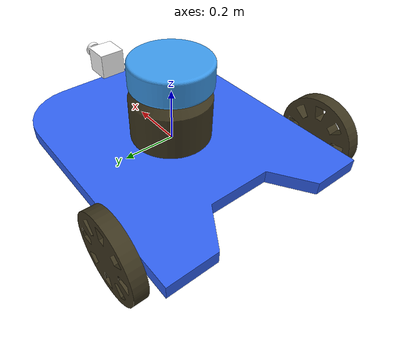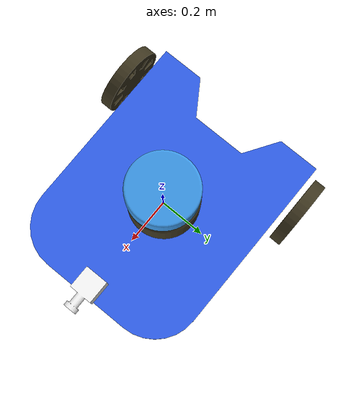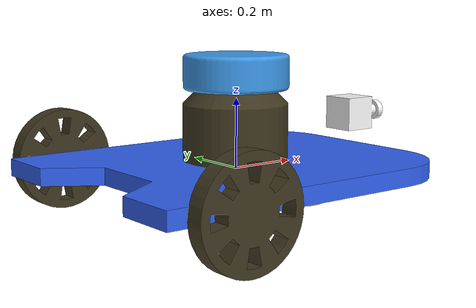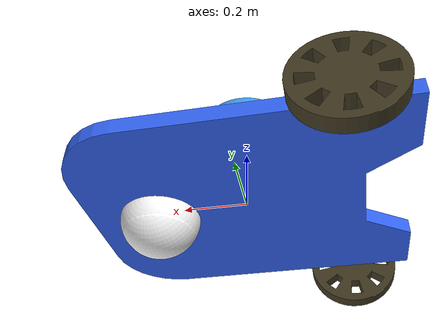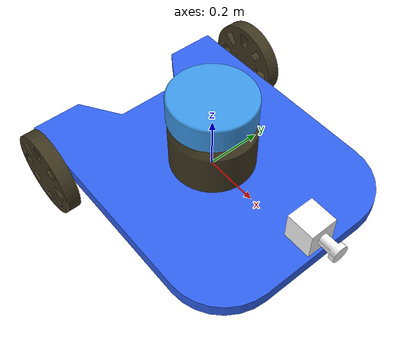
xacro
<?xml version="1.0" ?>

<robot name="moby" xmlns:xacro="http://www.ros.org/wiki/xacro" >
    <link name = "base_link">
        <visual>
            <origin xyz = "0 0 0" rpy = "0 0 0"/>
            <geometry>
                <mesh filename="package://urdf_sim/model/meshes/base.STL"/>
            </geometry>
            <material name="Cyan">
                <color rgba = "0.192 0.384 0.945 1.0"/>
            </material>
        </visual>
        <inertial>
            <mass value="0.3"/>
            <inertia ixx="0.002" ixy="0.0" ixz="0.0" iyy="0.002676" iyz="0" izz="0.004662"/>
        </inertial>

        <collision>
            <geometry>
                 <mesh filename="package://urdf_sim/model/meshes/base.STL"/>
            </geometry>
        </collision>
    </link>

    <link name = "leftwheel_link">
        <visual>
            <origin xyz = "0 0 0" rpy = "1.5708 0 1.5708"/>
            <geometry>
                <mesh filename="package://urdf_sim/model/meshes/wheel.STL"/>
            </geometry>
            <material name="grey">
                <color rgba = "0.243 0.215 0.125 1"/>
            </material>
        </visual>

        <inertial>
            <mass value="0.1"/>
            <inertia ixx="0.000032" ixy="0.0" ixz="0.0" iyy="0.000017" iyz="0" izz="0.000017"/>
        </inertial>

         <collision>
            <origin xyz = "0 0 0" rpy = "0 0 1.5708"/>
            <geometry>
                 <mesh filename="package://urdf_sim/model/meshes/wheel.dae"/>
            </geometry>
        </collision>
    </link>

    <joint name = "leftwheel_joint" type = "continuous">
        <origin xyz = "-0.32 0.45 0" rpy = "0 0 0"/>
        <parent link = "base_link"/>
        <child link = "leftwheel_link"/>
        <limit effort = "30" velocity="10"/>
        <axis rpy="0 0 0" xyz = "0 1 0"/>
    </joint>

    <link name = "rightwheel_link">
        <visual>
            <origin xyz = "0 0 0" rpy = "1.5708 0 1.5708"/>
            <geometry>
                <mesh filename="package://urdf_sim/model/meshes/wheel.dae"/>
            </geometry>
             <material name="grey">
                <color rgba = "0.243 0.215 0.125 1"/>
            </material>
        </visual>

        <inertial>
            <mass value="0.1"/>
            <inertia ixx="0.000032" ixy="0.0" ixz="0.0" iyy="0.000017" iyz="0" izz="0.000017"/>
        </inertial>

        <collision>
            <origin xyz = "0 0 0" rpy = "0 0 1.5708"/>
            <geometry>
                 <mesh filename="package://urdf_sim/model/meshes/wheel.STL"/>
            </geometry>
        </collision>
    </link>

    <joint name = "rightwheel_joint" type = "continuous">
        <origin xyz = "-0.32 -0.45 0" rpy = "0 0 0"/>
        <parent link = "base_link"/>
        <child link = "rightwheel_link"/>
        <limit effort = "30" velocity="10"/>
        <axis rpy="0 0 0" xyz = "0 1 0"/>
    </joint>

    <link name = "lidarbase_link">
        <visual>
            <origin xyz = "0 0 0.02" rpy = "0 0 0"/>
            <geometry>
                <mesh filename="package://urdf_sim/model/meshes/lidarBase.STL"/>
            </geometry>
            <material name="grey">

            </material>
        </visual>

        <inertial>
            <mass value="0.1"/>
            <inertia ixx="0.000114" ixy="0.0" ixz="0.0" iyy="0.000114" iyz="0" izz="0.000145"/>
        </inertial>

        <collision>
            <origin xyz = "0 0 0" rpy = "0 0 0"/>
            <geometry>
                 <mesh filename="package://urdf_sim/model/meshes/lidarBase.STL"/>
            </geometry>
        </collision>
    </link>

    <joint name = "lidarbase_joint" type = "fixed">
        <origin xyz = "0 0 0.125" rpy = "0 0 0"/>
        <parent link = "base_link"/>
        <child link = "lidarbase_link"/>
        <limit effort = "0" velocity="0"/>
        <axis rpy="0 0 0" xyz = "0 0 0"/>
    </joint>

    <link name = "caster_link">
        <visual>
            <origin xyz = "0 0 0" rpy = "0 0 0"/>
            <geometry>
                <mesh filename="package://urdf_sim/model/meshes/ball.STL"/>
            </geometry>
            <material name="white">
                <color rgba = "1 1 1 1"/>
            </material>
        </visual>

        <collision>
            <origin xyz = "0 0 0" rpy = "0 0 0"/>
            <geometry>
                 <mesh filename="package://urdf_sim/model/meshes/ball.STL"/>
            </geometry>
        </collision>
    </link>

    <joint name = "caster_joint" type = "fixed">
        <origin xyz = "0.275 0 0" rpy = "0 0 0"/>
        <parent link = "base_link"/>
        <child link = "caster_link"/>
        <limit effort = "0" velocity="0"/>
        <axis rpy="0 0 0" xyz = "0 0 0"/>
    </joint>

    <link name = "lidar_link">
        <visual>
            <origin xyz = "0 0 0" rpy = "0 0 0"/>
            <geometry>
                <mesh filename="package://urdf_sim/model/meshes/Lidar.STL"/>
            </geometry>
            <material name = "blue2">
                <color rgba = "0.239 0.604 0.917 1"/>
            </material>
        </visual>

        <inertial>
            <mass value="0.1"/>
            <inertia ixx="0.000045" ixy="0.0" ixz="0.0" iyy="0.000045" iyz="0" izz="0.000078"/>
        </inertial>

        <collision>
            <origin xyz = "0 0 0" rpy = "0 0 0"/>
            <geometry>
                  <mesh filename="package://urdf_sim/model/meshes/Lidar.STL"/>
            </geometry>
        </collision>
    </link>

    <joint name = "lidar_joint" type = "fixed">
        <origin xyz = "0 0 0.15" rpy = "0 0 0"/>
        <parent link = "lidarbase_link"/>
        <child link = "lidar_link"/>
        <limit effort = "0" velocity="0"/>
        <axis rpy="0 0 0" xyz = "0 0 0"/>
    </joint>

    <link name = "camera_link">
        <visual>
            <origin xyz = "0 0 0" rpy = "0 0 0"/>
            <geometry>
                <mesh filename="package://urdf_sim/model/meshes/Cam.STL"/>
            </geometry>
            <material name="white">
                <color rgba = "1 1 1 1"/>
            </material>

        </visual>
        <inertial>
            <mass value="0.05"/>
            <inertia ixx="0.00002" ixy="0.0" ixz="0.0" iyy="0.00002" iyz="0" izz="0.00004"/>
        </inertial>

        <collision>
            <origin xyz = "0 0 0" rpy = "0 0 0"/>
            <geometry>
                  <mesh filename="package://urdf_sim/model/meshes/Cam.STL"/>
            </geometry>
        </collision>
    </link>

     <joint name = "camera_joint" type = "revolute">
        <origin xyz = "0.45 0 0.125" rpy = "0 0 0"/>
        <parent link = "base_link"/>
        <child link = "camera_link"/>
        <limit effort = "10" velocity="10" upper = "0.523" lower = "-0.523"/>
        <axis rpy="0 0 0" xyz = "0 1 0"/>
    </joint>

    <gazebo reference="base_link">
        <material>Gazebo/Blue</material>
    </gazebo>

    <gazebo reference="leftwheel_link">
        <material>Gazebo/Grey</material>

        <mu1 value ="0.4"/>
        <mu2 value = "0.35"/>

        <kp value = "1000" />
        <kd value = "100"/>

    </gazebo>

    <gazebo reference="rightwheel_link">
        <material>Gazebo/Grey</material>-->

        <mu1 value ="0.4"/>
        <mu2 value = "0.35"/>

        <kp value = "1000" />
        <kd value = "100"/>

    </gazebo>

    <gazebo reference="lidarbase_link">
        <material>Gazebo/Blue</material>
    </gazebo>

    <gazebo reference="lidar_link">
        <material>Gazebo/BlueGlow</material>
    </gazebo>

    <gazebo reference="caster_link">
        <material>Gazebo/White</material>

        <mu1 value ="0.03"/>
        <mu2 value = "0.025"/>

        <kp value = "1000" />
        <kd value = "100"/>
    </gazebo>

    <gazebo reference="camera_link">
        <material>Gazebo/White</material>
    </gazebo>

    <gazebo>

	    <plugin filename="libgazebo_ros_diff_drive.so" name="differential_drive_controller">
		<alwaysOn>true</alwaysOn>
		<updateRate>20</updateRate>
		<leftJoint>leftwheel_joint</leftJoint>
		<rightJoint>rightwheel_joint</rightJoint>
		<wheelSeparation>0.9</wheelSeparation>
		<wheelDiameter>0.3</wheelDiameter>
		<torque>10</torque>
		<commandTopic>cmd_vel</commandTopic>
		<odometryTopic>odom</odometryTopic>
		<odometryFrame>odom</odometryFrame>
		<robotBaseFrame>base_link</robotBaseFrame>
	    </plugin>
    </gazebo>

	<gazebo reference="lidar_link">
        <sensor type="ray" name="moby_laser_sensor">
        <pose>0 0 0 0 0 0</pose>
        <visualize>false</visualize>
        <update_rate>20</update_rate>
        <ray>
         <scan>
            <horizontal>
                <samples>720</samples>
                <resolution>1</resolution>
                <min_angle>-3.14</min_angle>
                <max_angle>3.14</max_angle>
            </horizontal>
        </scan>
        <range>
             <min>0.2</min>
             <max>10.0</max>
             <resolution>0.01</resolution>
        </range>
        <noise>
              <type>gaussian</type>
              <mean>0.0</mean>
              <stddev>0.01</stddev>
        </noise>
        </ray>
        <plugin name="gazebo_ros_head_hokuyo_controller" filename="libgazebo_ros_laser.so">
        <topicName>/moby/laser/scan</topicName>
        <frameName>lidar_link</frameName>
      </plugin>
    </sensor>
  </gazebo>
	<!--IMU sensor-->
  <gazebo reference="base_link">
    <gravity>true</gravity>
    <sensor name="moby_imu_sensor" type="imu">
      <always_on>true</always_on>
      <update_rate>100</update_rate>
      <visualize>true</visualize>
      <topic>__default_topic__</topic>
      <plugin filename="libgazebo_ros_imu_sensor.so" name="imu_plugin">
        <topicName>moby/imu</topicName>
        <bodyName>base_link</bodyName>
        <updateRateHZ>10.0</updateRateHZ>
        <gaussianNoise>0.0</gaussianNoise>
        <xyzOffset>0 0 0</xyzOffset>
        <rpyOffset>0 0 0</rpyOffset>
        <frameName>base_links</frameName>
        <initialOrientationAsReference>false</initialOrientationAsReference>
      </plugin>
      <pose>0 0 0 0 0 0</pose>
    </sensor>
  </gazebo>

</robot>
